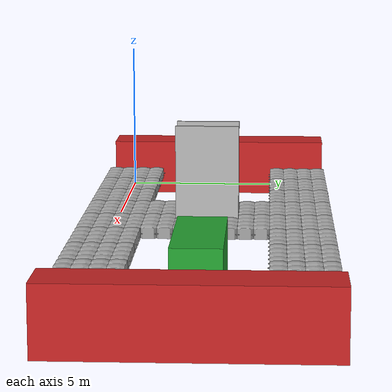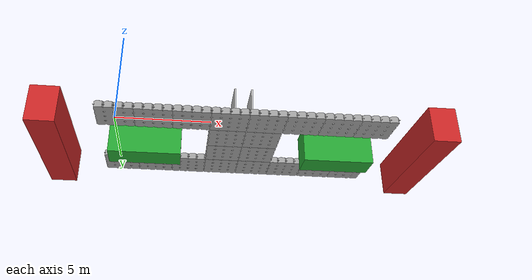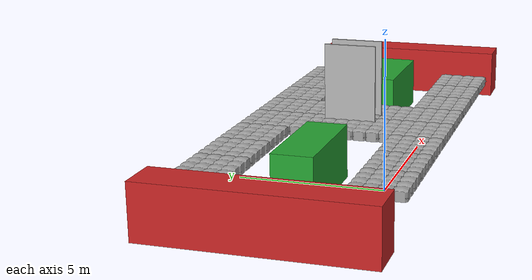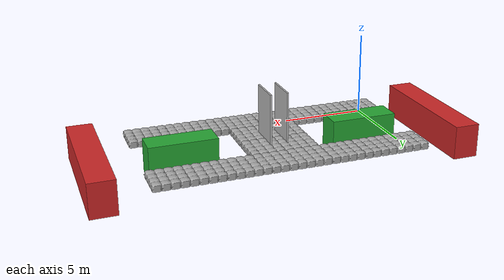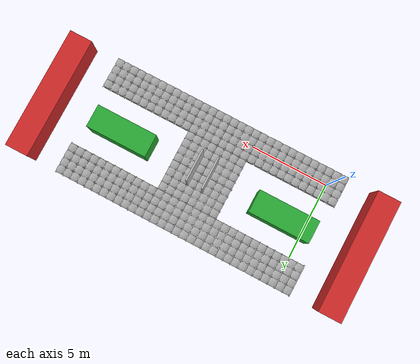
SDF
<?xml version="1.0" ?>
<sdf version="1.6">

  <model name="robotx_dock_2018">

    <!-- The 2018 dock base -->
    <include>
      <name>dock_2018_base</name>
      <uri>model://dock_2018_base_dynamic</uri>
    </include>

    <!-- Placard #1 -->
    <model name="dock_2018_placard1">
      <pose>7.5 3 1.6 0 0 1.5707963267948966</pose>
      <include>
        <pose>0 0 0.25 0 0 0</pose>
        <uri>model://placard</uri>
      </include>
      <link name="link_symbols">

        <pose> 0 -0.1 0.75 0 0 0 </pose>

        <visual name="visual_circle">
          <pose>0 0 0 1.571 0 0</pose>
          <geometry>
            <cylinder>
              <radius>0.5</radius>
              <length>0.001</length>
            </cylinder>
          </geometry>
          <transparency>1</transparency>
          <plugin name="placard1_plugin" filename="libplacard_plugin.so">
            <!-- Uncomment for setting the shape and color. -->
            <visuals>
              <visual>robotx_dock_2018::dock_2018_placard1::link_symbols::visual_circle</visual>
              <visual>robotx_dock_2018::dock_2018_placard1::link_symbols::visual_h_cross</visual>
              <visual>robotx_dock_2018::dock_2018_placard1::link_symbols::visual_v_cross</visual>
              <visual>robotx_dock_2018::dock_2018_placard1::link_symbols::visual_triangle</visual>
            </visuals>
            <shuffle>true</shuffle>
            <robot_namespace>vrx/dock_2018_placard1</robot_namespace>
            <ros_shuffle_topic>shuffle</ros_shuffle_topic>
          </plugin>
        </visual>
        <visual name="visual_h_cross">
          <pose>0 0 0 1.571 0 0</pose>
          <geometry>
            <box>
              <size>0.99 0.33 0.001</size>
            </box>
          </geometry>
          <transparency>1</transparency>
        </visual>
        <visual name="visual_v_cross">
          <pose>0 0 0 1.571 0 0</pose>
          <geometry>
            <box>
              <size>0.33 0.99 0.001</size>
            </box>
          </geometry>
          <transparency>1</transparency>
        </visual>
        <visual name="visual_triangle">
          <pose> -0.5 0 -0.5 1.571 0 0</pose>
          <geometry>
            <mesh><uri>model://symbol_triangle/mesh/triangle.dae</uri></mesh>
          </geometry>
          <transparency>1</transparency>
        </visual>
      </link>

      <joint name="placard_to_visual" type="fixed">
        <pose> 0 0 0 0 0 0 </pose>
        <parent>placard::link</parent>
        <child>link_symbols</child>
      </joint>

      <!-- For visualizing ContainPlugin volume
           Make sure that the size and location are consistent with plugin -->
      <link name="bay_visualization">
        <visual name="bay_box">

          <pose frame="placard::link">0 -5 -1.5 0 0 0</pose>

          <material>
            <script>
              <uri>file://media/materials/scripts/gazebo.material</uri>
              <name>Gazebo/Green</name>
            </script>
          </material>
          <geometry>
            <box>
              <size>1.5 4 2</size>
            </box>
          </geometry>
          <transparency>0.0</transparency>
        </visual>
        <visual name="bay_box_exterior">

          <pose frame="placard::link">0 -10 -1.5 0 0 0</pose>

          <material>
            <script>
              <uri>file://media/materials/scripts/gazebo.material</uri>
              <name>Gazebo/Red</name>
            </script>
          </material>
          <geometry>
            <box>
              <size>8 1.5 2</size>
            </box>
          </geometry>
          <transparency>0.0</transparency>
        </visual>
      </link>
      <joint name="placard_to_bay" type="fixed">
        <child>placard::link</child>
        <parent>bay_visualization</parent>
      </joint>

    </model>

    <!-- Placard #2 -->
    <model name="dock_2018_placard2">
      <pose>6.5 3 1.6 0 0 1.5707963267948966</pose>
      <include>
        <pose>0 0 0.25 0 0 0</pose>
        <uri>model://placard</uri>
      </include>
      <link name="link_symbols">

        <pose> 0 0.1 0.75 0 0 0 </pose>

        <visual name="visual_circle">
          <pose>0 0 0 1.571 0 0</pose>
          <geometry>
            <cylinder>
              <radius>0.5</radius>
              <length>0.001</length>
            </cylinder>
          </geometry>
          <transparency>1</transparency>
          <plugin name="placard2_plugin" filename="libplacard_plugin.so">
            <!-- Uncomment for setting the shape and color. -->
            <visuals>
              <visual>robotx_dock_2018::dock_2018_placard2::link_symbols::visual_circle</visual>
              <visual>robotx_dock_2018::dock_2018_placard2::link_symbols::visual_h_cross</visual>
              <visual>robotx_dock_2018::dock_2018_placard2::link_symbols::visual_v_cross</visual>
              <visual>robotx_dock_2018::dock_2018_placard2::link_symbols::visual_triangle</visual>
            </visuals>
            <shuffle>true</shuffle>
            <robot_namespace>vrx/dock_2018_placard2</robot_namespace>
            <ros_shuffle_topic>shuffle</ros_shuffle_topic>
          </plugin>
        </visual>
        <visual name="visual_h_cross">
          <pose>0 0 0 1.571 0 0</pose>
          <geometry>
            <box>
              <size>0.99 0.33 0.001</size>
            </box>
          </geometry>
          <transparency>1</transparency>
        </visual>
        <visual name="visual_v_cross">
          <pose>0 0 0 1.571 0 0</pose>
          <geometry>
            <box>
              <size>0.33 0.99 0.001</size>
            </box>
          </geometry>
          <transparency>1</transparency>
        </visual>
        <visual name="visual_triangle">
          <pose> -0.5 0 -0.5 1.571 0 0</pose>
          <geometry>
            <mesh><uri>model://symbol_triangle/mesh/triangle.dae</uri></mesh>
          </geometry>
          <transparency>1</transparency>
        </visual>
      </link>

      <joint name="placard_to_visual" type="fixed">
        <pose> 0 0 0 0 0 0 </pose>
        <parent>placard::link</parent>
        <child>link_symbols</child>
      </joint>

      <!-- For visualizing ContainPlugin volume
           Make sure that the size and location are consistent with plugin -->
      <link name="bay_visualization">
        <visual name="bay_box">

          <pose frame="placard::link">0  5 -1.5 0 0 0</pose>

          <material>
            <script>
              <uri>file://media/materials/scripts/gazebo.material</uri>
              <name>Gazebo/Green</name>
            </script>
          </material>
          <geometry>
            <box>
              <size>1.5 4 2</size>
            </box>
          </geometry>
          <transparency>0.0</transparency>
        </visual>
        <visual name="bay_box_exterior">

          <pose frame="placard::link">0  10 -1.5 0 0 0</pose>

          <material>
            <script>
              <uri>file://media/materials/scripts/gazebo.material</uri>
              <name>Gazebo/Red</name>
            </script>
          </material>
          <geometry>
            <box>
              <size>8 1.5 2</size>
            </box>
          </geometry>
          <transparency>0.0</transparency>
        </visual>
      </link>
      <joint name="placard_to_bay" type="fixed">
        <child>placard::link</child>
        <parent>bay_visualization</parent>
      </joint>

    </model>

    <joint name = "joint_placard1" type="fixed">
      <pose>0 0 3 0 0 0 </pose>
      <parent>dock_2018_placard1::placard::link</parent>
      <child>dock_2018_base::dock_block_4_1::link</child>
    </joint>

    <joint name = "joint_placard2" type="fixed">
      <pose>0 0 3 0 0 0 </pose>
      <parent>dock_2018_placard2::placard::link</parent>
      <child>dock_2018_base::dock_block_3_1::link</child>
    </joint>
  </model>
</sdf>

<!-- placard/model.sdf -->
<sdf version="1.6">
  <model name="placard">
    <pose>0 0 1 0 0 0</pose>
    <!-- The white placard -->
    <link name="link">
      <visual name="visual">
        <geometry>
          <box>
            <size>2 0.1 3</size>
          </box>
        </geometry>
      </visual>
    </link>
  </model>
</sdf>

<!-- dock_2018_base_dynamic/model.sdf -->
<sdf version="1.6">

  <!-- Important: This file is generated. DO NOT EDIT! -->

  <model name="robotx_dock_2018_base_dynamic">

    <!--
      This is how this dock should look like:

          X  X          X  X          X  X          XXXX          XXXX          X  X          X  X          X  X
    -->

    <!-- Row 0 -->
    <include>
      <name>dock_block_0_0</name>
      <pose>0 0 0.25 0 0 0</pose>
        <uri>model://dock_block_4x4_dynamic</uri>
    </include>
    <include>
      <name>dock_block_0_3</name>
      <pose>0 6 0.25 0 0 0</pose>
        <uri>model://dock_block_4x4_dynamic</uri>
    </include>

    <!-- Row 1 -->
    <include>
      <name>dock_block_1_0</name>
      <pose>2 0 0.25 0 0 0</pose>
        <uri>model://dock_block_4x4_dynamic</uri>
    </include>
    <include>
      <name>dock_block_1_3</name>
      <pose>2 6 0.25 0 0 0</pose>
        <uri>model://dock_block_4x4_dynamic</uri>
    </include>

    <!-- Row 2 -->
    <include>
      <name>dock_block_2_0</name>
      <pose>4 0 0.25 0 0 0</pose>
        <uri>model://dock_block_4x4_dynamic</uri>
    </include>
    <include>
      <name>dock_block_2_3</name>
      <pose>4 6 0.25 0 0 0</pose>
        <uri>model://dock_block_4x4_dynamic</uri>
    </include>

    <!-- Row 3 -->
    <include>
      <name>dock_block_3_0</name>
      <pose>6 0 0.25 0 0 0</pose>
        <uri>model://dock_block_4x4_dynamic</uri>
    </include>
    <include>
      <name>dock_block_3_1</name>
      <pose>6 2 0.25 0 0 0</pose>
        <uri>model://dock_block_4x4_dynamic</uri>
    </include>
    <include>
      <name>dock_block_3_2</name>
      <pose>6 4 0.25 0 0 0</pose>
        <uri>model://dock_block_4x4_dynamic</uri>
    </include>
    <include>
      <name>dock_block_3_3</name>
      <pose>6 6 0.25 0 0 0</pose>
        <uri>model://dock_block_4x4_dynamic</uri>
    </include>

    <!-- Row 4 -->
    <include>
      <name>dock_block_4_0</name>
      <pose>8 0 0.25 0 0 0</pose>
        <uri>model://dock_block_4x4_dynamic</uri>
    </include>
    <include>
      <name>dock_block_4_1</name>
      <pose>8 2 0.25 0 0 0</pose>
        <uri>model://dock_block_4x4_dynamic</uri>
    </include>
    <include>
      <name>dock_block_4_2</name>
      <pose>8 4 0.25 0 0 0</pose>
        <uri>model://dock_block_4x4_dynamic</uri>
    </include>
    <include>
      <name>dock_block_4_3</name>
      <pose>8 6 0.25 0 0 0</pose>
        <uri>model://dock_block_4x4_dynamic</uri>
    </include>

    <!-- Row 5 -->
    <include>
      <name>dock_block_5_0</name>
      <pose>10 0 0.25 0 0 0</pose>
        <uri>model://dock_block_4x4_dynamic</uri>
    </include>
    <include>
      <name>dock_block_5_3</name>
      <pose>10 6 0.25 0 0 0</pose>
        <uri>model://dock_block_4x4_dynamic</uri>
    </include>

    <!-- Row 6 -->
    <include>
      <name>dock_block_6_0</name>
      <pose>12 0 0.25 0 0 0</pose>
        <uri>model://dock_block_4x4_dynamic</uri>
    </include>
    <include>
      <name>dock_block_6_3</name>
      <pose>12 6 0.25 0 0 0</pose>
        <uri>model://dock_block_4x4_dynamic</uri>
    </include>

    <!-- Row 7 -->
    <include>
      <name>dock_block_7_0</name>
      <pose>14 0 0.25 0 0 0</pose>
        <uri>model://dock_block_4x4_dynamic</uri>
    </include>
    <include>
      <name>dock_block_7_3</name>
      <pose>14 6 0.25 0 0 0</pose>
        <uri>model://dock_block_4x4_dynamic</uri>
    </include>

    <!-- Add joints across rows -->

    <!-- Row 0 -->

    <!-- Row 1 -->

    <!-- Row 2 -->

    <!-- Row 3 -->
    <joint name="3_0_to_3_1" type="revolute">
      <pose> 0  1.0 0 0 0 0</pose>
      <parent>dock_block_3_1::link</parent>
      <child>dock_block_3_0::link</child>
      <axis>
        <limit>
          <lower>-0.1</lower>
          <upper>0.1</upper>
        </limit>
        <xyz>1 0 0</xyz>
      </axis>
    </joint>
    <joint name="3_1_to_3_2" type="revolute">
      <pose> 0  1.0 0 0 0 0</pose>
      <parent>dock_block_3_2::link</parent>
      <child>dock_block_3_1::link</child>
      <axis>
        <limit>
          <lower>-0.1</lower>
          <upper>0.1</upper>
        </limit>
        <xyz>1 0 0</xyz>
      </axis>
    </joint>
    <joint name="3_2_to_3_3" type="revolute">
      <pose> 0  1.0 0 0 0 0</pose>
      <parent>dock_block_3_3::link</parent>
      <child>dock_block_3_2::link</child>
      <axis>
        <limit>
          <lower>-0.1</lower>
          <upper>0.1</upper>
        </limit>
        <xyz>1 0 0</xyz>
      </axis>
    </joint>

    <!-- Row 4 -->
    <joint name="4_0_to_4_1" type="revolute">
      <pose> 0  1.0 0 0 0 0</pose>
      <parent>dock_block_4_1::link</parent>
      <child>dock_block_4_0::link</child>
      <axis>
        <limit>
          <lower>-0.1</lower>
          <upper>0.1</upper>
        </limit>
        <xyz>1 0 0</xyz>
      </axis>
    </joint>
    <joint name="4_1_to_4_2" type="revolute">
      <pose> 0  1.0 0 0 0 0</pose>
      <parent>dock_block_4_2::link</parent>
      <child>dock_block_4_1::link</child>
      <axis>
        <limit>
          <lower>-0.1</lower>
          <upper>0.1</upper>
        </limit>
        <xyz>1 0 0</xyz>
      </axis>
    </joint>
    <joint name="4_2_to_4_3" type="revolute">
      <pose> 0  1.0 0 0 0 0</pose>
      <parent>dock_block_4_3::link</parent>
      <child>dock_block_4_2::link</child>
      <axis>
        <limit>
          <lower>-0.1</lower>
          <upper>0.1</upper>
        </limit>
        <xyz>1 0 0</xyz>
      </axis>
    </joint>

    <!-- Row 5 -->

    <!-- Row 6 -->

    <!-- Row 7 -->

    <!-- Add joints across columns -->

    <!-- Column 0 -->
    <joint name="1_0_to_0_0" type="revolute">
      <pose> 1.0 0 0 0 0 0</pose>
      <parent>dock_block_1_0::link</parent>
      <child>dock_block_0_0::link</child>
      <axis>
        <limit>
          <lower>-0.1</lower>
          <upper>0.1</upper>
        </limit>
        <xyz>0 1 0</xyz>
      </axis>
    </joint>
    <joint name="2_0_to_1_0" type="revolute">
      <pose> 1.0 0 0 0 0 0</pose>
      <parent>dock_block_2_0::link</parent>
      <child>dock_block_1_0::link</child>
      <axis>
        <limit>
          <lower>-0.1</lower>
          <upper>0.1</upper>
        </limit>
        <xyz>0 1 0</xyz>
      </axis>
    </joint>
    <joint name="3_0_to_2_0" type="revolute">
      <pose> 1.0 0 0 0 0 0</pose>
      <parent>dock_block_3_0::link</parent>
      <child>dock_block_2_0::link</child>
      <axis>
        <limit>
          <lower>-0.1</lower>
          <upper>0.1</upper>
        </limit>
        <xyz>0 1 0</xyz>
      </axis>
    </joint>
    <joint name="4_0_to_3_0" type="revolute">
      <pose> 1.0 0 0 0 0 0</pose>
      <parent>dock_block_4_0::link</parent>
      <child>dock_block_3_0::link</child>
      <axis>
        <limit>
          <lower>-0.1</lower>
          <upper>0.1</upper>
        </limit>
        <xyz>0 1 0</xyz>
      </axis>
    </joint>
    <joint name="5_0_to_4_0" type="revolute">
      <pose> 1.0 0 0 0 0 0</pose>
      <parent>dock_block_5_0::link</parent>
      <child>dock_block_4_0::link</child>
      <axis>
        <limit>
          <lower>-0.1</lower>
          <upper>0.1</upper>
        </limit>
        <xyz>0 1 0</xyz>
      </axis>
    </joint>
    <joint name="6_0_to_5_0" type="revolute">
      <pose> 1.0 0 0 0 0 0</pose>
      <parent>dock_block_6_0::link</parent>
      <child>dock_block_5_0::link</child>
      <axis>
        <limit>
          <lower>-0.1</lower>
          <upper>0.1</upper>
        </limit>
        <xyz>0 1 0</xyz>
      </axis>
    </joint>
    <joint name="7_0_to_6_0" type="revolute">
      <pose> 1.0 0 0 0 0 0</pose>
      <parent>dock_block_7_0::link</parent>
      <child>dock_block_6_0::link</child>
      <axis>
        <limit>
          <lower>-0.1</lower>
          <upper>0.1</upper>
        </limit>
        <xyz>0 1 0</xyz>
      </axis>
    </joint>

    <!-- Column 1 -->
    <joint name="4_1_to_3_1" type="revolute">
      <pose> 1.0 0 0 0 0 0</pose>
      <parent>dock_block_4_1::link</parent>
      <child>dock_block_3_1::link</child>
      <axis>
        <limit>
          <lower>-0.1</lower>
          <upper>0.1</upper>
        </limit>
        <xyz>0 1 0</xyz>
      </axis>
    </joint>

    <!-- Column 2 -->
    <joint name="4_2_to_3_2" type="revolute">
      <pose> 1.0 0 0 0 0 0</pose>
      <parent>dock_block_4_2::link</parent>
      <child>dock_block_3_2::link</child>
      <axis>
        <limit>
          <lower>-0.1</lower>
          <upper>0.1</upper>
        </limit>
        <xyz>0 1 0</xyz>
      </axis>
    </joint>

    <!-- Column 3 -->
    <joint name="1_3_to_0_3" type="revolute">
      <pose> 1.0 0 0 0 0 0</pose>
      <parent>dock_block_1_3::link</parent>
      <child>dock_block_0_3::link</child>
      <axis>
        <limit>
          <lower>-0.1</lower>
          <upper>0.1</upper>
        </limit>
        <xyz>0 1 0</xyz>
      </axis>
    </joint>
    <joint name="2_3_to_1_3" type="revolute">
      <pose> 1.0 0 0 0 0 0</pose>
      <parent>dock_block_2_3::link</parent>
      <child>dock_block_1_3::link</child>
      <axis>
        <limit>
          <lower>-0.1</lower>
          <upper>0.1</upper>
        </limit>
        <xyz>0 1 0</xyz>
      </axis>
    </joint>
    <joint name="3_3_to_2_3" type="revolute">
      <pose> 1.0 0 0 0 0 0</pose>
      <parent>dock_block_3_3::link</parent>
      <child>dock_block_2_3::link</child>
      <axis>
        <limit>
          <lower>-0.1</lower>
          <upper>0.1</upper>
        </limit>
        <xyz>0 1 0</xyz>
      </axis>
    </joint>
    <joint name="4_3_to_3_3" type="revolute">
      <pose> 1.0 0 0 0 0 0</pose>
      <parent>dock_block_4_3::link</parent>
      <child>dock_block_3_3::link</child>
      <axis>
        <limit>
          <lower>-0.1</lower>
          <upper>0.1</upper>
        </limit>
        <xyz>0 1 0</xyz>
      </axis>
    </joint>
    <joint name="5_3_to_4_3" type="revolute">
      <pose> 1.0 0 0 0 0 0</pose>
      <parent>dock_block_5_3::link</parent>
      <child>dock_block_4_3::link</child>
      <axis>
        <limit>
          <lower>-0.1</lower>
          <upper>0.1</upper>
        </limit>
        <xyz>0 1 0</xyz>
      </axis>
    </joint>
    <joint name="6_3_to_5_3" type="revolute">
      <pose> 1.0 0 0 0 0 0</pose>
      <parent>dock_block_6_3::link</parent>
      <child>dock_block_5_3::link</child>
      <axis>
        <limit>
          <lower>-0.1</lower>
          <upper>0.1</upper>
        </limit>
        <xyz>0 1 0</xyz>
      </axis>
    </joint>
    <joint name="7_3_to_6_3" type="revolute">
      <pose> 1.0 0 0 0 0 0</pose>
      <parent>dock_block_7_3::link</parent>
      <child>dock_block_6_3::link</child>
      <axis>
        <limit>
          <lower>-0.1</lower>
          <upper>0.1</upper>
        </limit>
        <xyz>0 1 0</xyz>
      </axis>
    </joint>

  </model>
</sdf>

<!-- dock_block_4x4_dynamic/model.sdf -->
<sdf version="1.5">
  <model name="dock_block_4x4">
    <static>false</static>
    <link name="link">
      <velocity_decay>
        <linear>0.001</linear>
        <angular>0.001</angular>
      </velocity_decay>
       <inertial>
        <pose>0 0 0 0 0 0</pose>
        <mass>160</mass>
        <inertia>
          <ixx>55.467</ixx>
          <ixy>0</ixy>
          <ixz>0</ixz>
          <iyy>55.467</iyy>
          <iyz>0</iyz>
          <izz>106.67</izz>
        </inertia>
      </inertial>
      <collision name="collision">
        <pose>0 0 0 0 0 0</pose>
        <geometry>
          <box>
            <size>2 2 0.4</size>
          </box>
        </geometry>
      </collision>
      <visual name="visual">
        <pose>-0.25 0.25 0.2 0 0 0 </pose>
        <geometry>
          <mesh>
            <uri>file://dock_block_4x4/mesh/dock_block_4x4.dae</uri>
          </mesh>
        </geometry>
      </visual>
    </link>
    <plugin name="BuoyancyPlugin" filename="libbuoyancy_gazebo_plugin.so">
      <wave_model>ocean_waves</wave_model>
      <fluid_density>1000</fluid_density>
      <fluid_level>0</fluid_level>
      <linear_drag>1000.0</linear_drag>
      <angular_drag>200.0</angular_drag>
      <buoyancy name="buoyancy_base">
        <link_name>link</link_name>
      	<pose>0 0 0.35 0 0 0</pose>
        <geometry>
					<sphere>
            <radius>0.72557</radius>
          </sphere>
				</geometry>
      </buoyancy>
    </plugin>
  </model>
</sdf>
